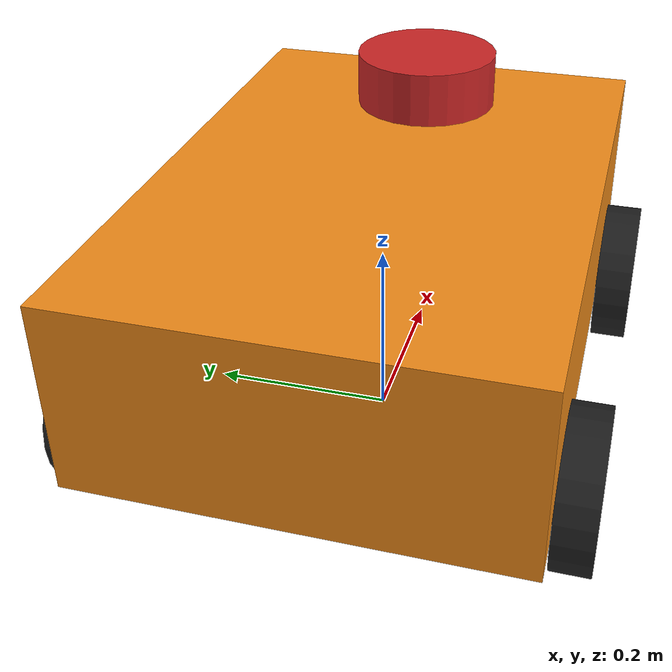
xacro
<?xml version="1.0"?>
<robot xmlns:xacro="http://www.ros.org/wiki/xacro">

    <!-- Base link footprint for gazebo -->
    <link name="base_footprint"/>
    <joint name="base_footprint_joint" type="fixed">
        <parent link="base_footprint"/>
        <child link="base_link"/>
        <origin xyz="0 0 0.1" rpy="0 0 0"/>
    </joint>

    <!-- Main Chassis -->
    <link name="base_link">
        <visual>
            <origin xyz="0 0 0.1" rpy="0 0 0"/>
            <geometry>
                <box size="0.65 0.45 0.2"/>
            </geometry>
            <material name="orange"/>
        </visual>
        <collision>
            <origin xyz="0 0 0.1" rpy="0 0 0"/>
            <geometry>
                <box size="0.65 0.45 0.2"/>
            </geometry>
        </collision>
        <xacro:box_inertia m="5.0" w="0.45" h="0.65" d="0.2"
                           x="0" y="0" z="0.1" r="0" p="0" y_rot="0"/>
    </link>

    <gazebo reference="base_link">
        <material>Gazebo/Orange</material>
    </gazebo>

    <!-- Wheels Macro -->
    <xacro:macro name="wheel" params="prefix x_reflect y_reflect">
        <link name="${prefix}_wheel">
            <visual>
                <geometry>
                    <cylinder radius="0.08" length="0.04" />
                </geometry>
                <origin xyz="0 0 0" rpy="1.57079632679 0 0" />
                <material name="black" />
            </visual>
            <collision>
                <geometry>
                    <cylinder radius="0.08" length="0.04" />
                </geometry>
                <origin xyz="0 0 0" rpy="1.57079632679 0 0" />
            </collision>
            <xacro:cylinder_inertia m="0.5" r="0.08" h="0.04"
                                    x="0" y="0" z="0" roll="1.57079632679" pitch="0" yaw="0"/>
        </link>

        <joint name="base_${prefix}_wheel_joint" type="continuous">
            <parent link="base_link" />
            <child link="${prefix}_wheel" />
            <origin xyz="${x_reflect * 0.2} ${y_reflect * 0.245} 0" rpy="0 0 0" />
            <axis xyz="0 1 0" />
        </joint>

        <gazebo reference="${prefix}_wheel">
            <material>Gazebo/Black</material>
            <mu1 value="1.0"/>
            <mu2 value="1.0"/>
        </gazebo>
    </xacro:macro>

    <!-- Instantiate Wheels -->
    <xacro:wheel prefix="front_left" x_reflect="1" y_reflect="1"/>
    <xacro:wheel prefix="front_right" x_reflect="1" y_reflect="-1"/>
    <xacro:wheel prefix="back_left" x_reflect="-1" y_reflect="1"/>
    <xacro:wheel prefix="back_right" x_reflect="-1" y_reflect="-1"/>

    <!-- Lidar -->
    <link name="lidar">
        <visual>
            <geometry>
                <cylinder radius="0.08" length="0.06" />
            </geometry>
            <origin xyz="0 0 0" rpy="0 0 0" />
            <material name="red" />
        </visual>
        <collision>
            <geometry>
                <cylinder radius="0.08" length="0.06" />
            </geometry>
            <origin xyz="0 0 0" rpy="0 0 0" />
        </collision>
        <xacro:cylinder_inertia m="0.2" r="0.08" h="0.06"
                                x="0" y="0" z="0" roll="0" pitch="0" yaw="0"/>
    </link>

    <joint name="base_lidar_joint" type="fixed">
        <parent link="base_link" />
        <child link="lidar" />
        <!-- Placed slightly forward to leave room for the arm -->
        <origin xyz="0.2 0 0.23" rpy="0 0 0" />
    </joint>

    <gazebo reference="lidar">
        <material>Gazebo/Red</material>
    </gazebo>

    <!-- Gazebo Plugin for Skid Steer Drive -->
    <gazebo>
        <plugin name="skid_steer_drive" filename="libgazebo_ros_diff_drive.so">
            <ros>
                <namespace>/</namespace>
            </ros>
            <update_rate>50</update_rate>

            <num_wheel_pairs>2</num_wheel_pairs>

            <left_joint>base_front_left_wheel_joint</left_joint>
            <right_joint>base_front_right_wheel_joint</right_joint>

            <left_joint>base_back_left_wheel_joint</left_joint>
            <right_joint>base_back_right_wheel_joint</right_joint>

            <wheel_separation>0.49</wheel_separation>
            <wheel_separation>0.49</wheel_separation>
            <wheel_diameter>0.16</wheel_diameter>
            <wheel_diameter>0.16</wheel_diameter>

            <max_wheel_torque>20</max_wheel_torque>
            <max_wheel_acceleration>1.0</max_wheel_acceleration>

            <command_topic>cmd_vel</command_topic>
            <odometry_topic>odom</odometry_topic>
            <odometry_frame>odom</odometry_frame>
            <robot_base_frame>base_footprint</robot_base_frame>
            <publish_odom>true</publish_odom>
            <publish_odom_tf>true</publish_odom_tf>
            <publish_wheel_tf>true</publish_wheel_tf>
        </plugin>
    </gazebo>

</robot>
